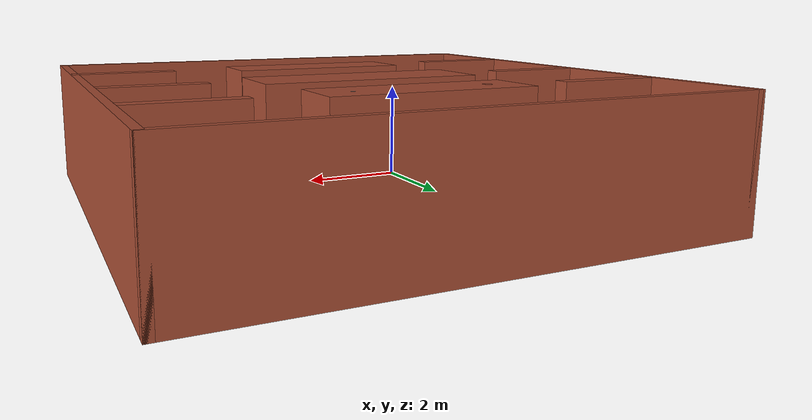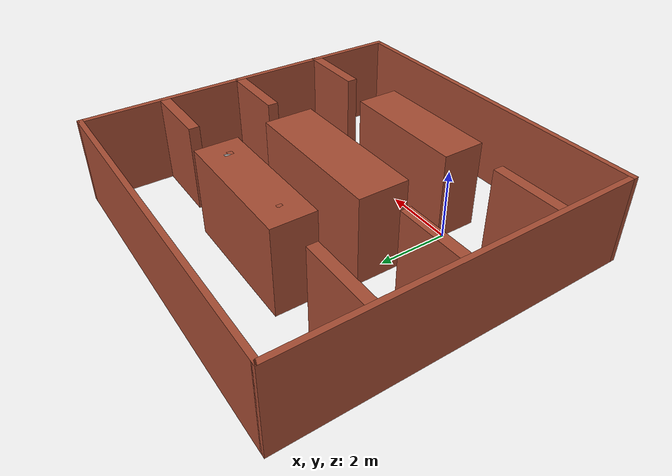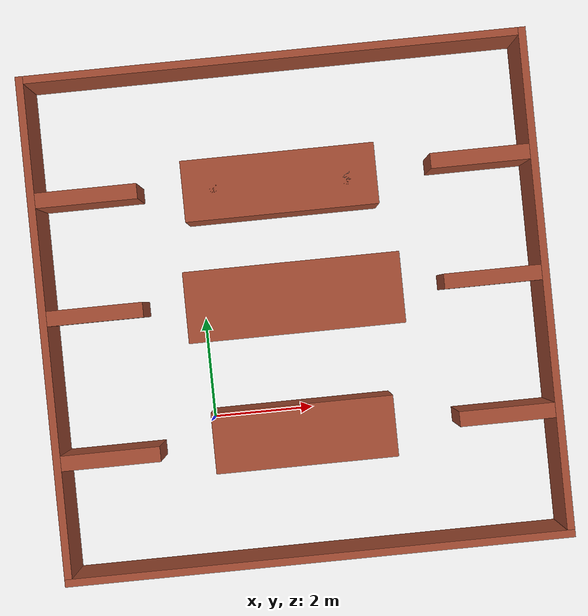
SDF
<?xml version='1.0'?>
<sdf version='1.6'>
  <model name='acme_office'>
    <pose frame=''>1.845 2.065 0 0 -0 0</pose>
    <link name='Wall_0'>
      <collision name='Wall_0_Collision'>
        <geometry>
          <box>
            <size>10 0.15 2.5</size>
          </box>
        </geometry>
        <pose frame=''>0 0 1.25 0 -0 0</pose>
      </collision>
      <visual name='Wall_0_Visual'>
        <pose frame=''>0 0 1.25 0 -0 0</pose>
        <geometry>
          <box>
            <size>10 0.15 2.5</size>
          </box>
        </geometry>
        <material>
          <script>
            <uri>file://media/materials/scripts/gazebo.material</uri>
            <name>Gazebo/Bricks</name>
          </script>
          <ambient>1 1 1 1</ambient>
        </material>
        <meta>
          <layer>0</layer>
        </meta>
      </visual>
      <pose frame=''>0 -4.925 0 0 -0 0</pose>
    </link>
    <link name='Wall_101'>
      <collision name='Wall_101_Collision'>
        <geometry>
          <box>
            <size>3.8 1.2 2.5</size>
          </box>
        </geometry>
        <pose frame=''>0 0 1.25 0 -0 0</pose>
      </collision>
      <visual name='Wall_101_Visual'>
        <pose frame=''>0 0 1.25 0 -0 0</pose>
        <geometry>
          <box>
            <size>3.8 1.2 2.5</size>
          </box>
        </geometry>
        <material>
          <script>
            <uri>file://media/materials/scripts/gazebo.material</uri>
            <name>Gazebo/Bricks</name>
          </script>
          <ambient>1 1 1 1</ambient>
        </material>
        <meta>
          <layer>0</layer>
        </meta>
      </visual>
      <pose frame=''>-0.068 2.452 0 0 -0 0</pose>
    </link>
    <link name='Wall_27'>
      <collision name='Wall_27_Collision'>
        <geometry>
          <box>
            <size>10 0.15 2.5</size>
          </box>
        </geometry>
        <pose frame=''>0 0 1.25 0 -0 0</pose>
      </collision>
      <visual name='Wall_27_Visual'>
        <pose frame=''>0 0 1.25 0 -0 0</pose>
        <geometry>
          <box>
            <size>10 0.15 2.5</size>
          </box>
        </geometry>
        <material>
          <script>
            <uri>file://media/materials/scripts/gazebo.material</uri>
            <name>Gazebo/Bricks</name>
          </script>
          <ambient>1 1 1 1</ambient>
        </material>
        <meta>
          <layer>0</layer>
        </meta>
      </visual>
      <pose frame=''>-4.925 0 0 0 -0 1.5708</pose>
    </link>
    <link name='Wall_29'>
      <collision name='Wall_29_Collision'>
        <geometry>
          <box>
            <size>10 0.15 2.5</size>
          </box>
        </geometry>
        <pose frame=''>0 0 1.25 0 -0 0</pose>
      </collision>
      <visual name='Wall_29_Visual'>
        <pose frame=''>0 0 1.25 0 -0 0</pose>
        <geometry>
          <box>
            <size>10 0.15 2.5</size>
          </box>
        </geometry>
        <material>
          <script>
            <uri>file://media/materials/scripts/gazebo.material</uri>
            <name>Gazebo/Bricks</name>
          </script>
          <ambient>1 1 1 1</ambient>
        </material>
        <meta>
          <layer>0</layer>
        </meta>
      </visual>
      <pose frame=''>4.925 0 0 0 -0 1.5708</pose>
    </link>
    <link name='Wall_32'>
      <collision name='Wall_32_Collision'>
        <geometry>
          <box>
            <size>10 0.15 2.5</size>
          </box>
        </geometry>
        <pose frame=''>0 0 1.25 0 -0 0</pose>
      </collision>
      <visual name='Wall_32_Visual'>
        <pose frame=''>0 0 1.25 0 -0 0</pose>
        <geometry>
          <box>
            <size>10 0.15 2.5</size>
          </box>
        </geometry>
        <material>
          <script>
            <uri>file://media/materials/scripts/gazebo.material</uri>
            <name>Gazebo/Bricks</name>
          </script>
          <ambient>1 1 1 1</ambient>
        </material>
        <meta>
          <layer>0</layer>
        </meta>
      </visual>
      <pose frame=''>0 4.925 0 0 -0 0</pose>
    </link>
    <link name='Wall_35'>
      <collision name='Wall_35_Collision'>
        <geometry>
          <box>
            <size>2 0.3 2.5</size>
          </box>
        </geometry>
        <pose frame=''>0 0 1.25 0 -0 0</pose>
      </collision>
      <visual name='Wall_35_Visual'>
        <pose frame=''>0 0 1.25 0 -0 0</pose>
        <geometry>
          <box>
            <size>2 0.3 2.5</size>
          </box>
        </geometry>
        <material>
          <script>
            <uri>file://media/materials/scripts/gazebo.material</uri>
            <name>Gazebo/Bricks</name>
          </script>
          <ambient>1 1 1 1</ambient>
        </material>
        <meta>
          <layer>0</layer>
        </meta>
      </visual>
      <pose frame=''>-3.85146 2.55781 0 0 -0 0</pose>
    </link>
    <link name='Wall_38'>
      <collision name='Wall_38_Collision'>
        <geometry>
          <box>
            <size>2 0.3 2.5</size>
          </box>
        </geometry>
        <pose frame=''>0 0 1.25 0 -0 0</pose>
      </collision>
      <visual name='Wall_38_Visual'>
        <pose frame=''>0 0 1.25 0 -0 0</pose>
        <geometry>
          <box>
            <size>2 0.3 2.5</size>
          </box>
        </geometry>
        <material>
          <script>
            <uri>file://media/materials/scripts/gazebo.material</uri>
            <name>Gazebo/Bricks</name>
          </script>
          <ambient>1 1 1 1</ambient>
        </material>
        <meta>
          <layer>0</layer>
        </meta>
      </visual>
      <pose frame=''>3.90305 2.575 0 0 -0 3.14159</pose>
    </link>
    <link name='Wall_50'>
      <collision name='Wall_50_Collision'>
        <geometry>
          <box>
            <size>2 0.3 2.5</size>
          </box>
        </geometry>
        <pose frame=''>0 0 1.25 0 -0 0</pose>
      </collision>
      <visual name='Wall_50_Visual'>
        <pose frame=''>0 0 1.25 0 -0 0</pose>
        <geometry>
          <box>
            <size>2 0.3 2.5</size>
          </box>
        </geometry>
        <material>
          <script>
            <uri>file://media/materials/scripts/gazebo.material</uri>
            <name>Gazebo/Bricks</name>
          </script>
          <ambient>1 1 1 1</ambient>
        </material>
        <meta>
          <layer>0</layer>
        </meta>
      </visual>
      <pose frame=''>-3.95974 0.242195 0 0 -0 0</pose>
    </link>
    <link name='Wall_53'>
      <collision name='Wall_53_Collision'>
        <geometry>
          <box>
            <size>2 0.3 2.5</size>
          </box>
        </geometry>
        <pose frame=''>0 0 1.25 0 -0 0</pose>
      </collision>
      <visual name='Wall_53_Visual'>
        <pose frame=''>0 0 1.25 0 -0 0</pose>
        <geometry>
          <box>
            <size>2 0.3 2.5</size>
          </box>
        </geometry>
        <material>
          <script>
            <uri>file://media/materials/scripts/gazebo.material</uri>
            <name>Gazebo/Bricks</name>
          </script>
          <ambient>1 1 1 1</ambient>
        </material>
        <meta>
          <layer>0</layer>
        </meta>
      </visual>
      <pose frame=''>-3.89703 -2.59387 0 0 -0 0</pose>
    </link>
    <link name='Wall_64'>
      <collision name='Wall_64_Collision'>
        <geometry>
          <box>
            <size>2 0.3 2.5</size>
          </box>
        </geometry>
        <pose frame=''>0 0 1.25 0 -0 0</pose>
      </collision>
      <visual name='Wall_64_Visual'>
        <pose frame=''>0 0 1.25 0 -0 0</pose>
        <geometry>
          <box>
            <size>2 0.3 2.5</size>
          </box>
        </geometry>
        <material>
          <script>
            <uri>file://media/materials/scripts/gazebo.material</uri>
            <name>Gazebo/Bricks</name>
          </script>
          <ambient>1 1 1 1</ambient>
        </material>
        <meta>
          <layer>0</layer>
        </meta>
      </visual>
      <pose frame=''>3.93744 0.207804 0 0 -0 0</pose>
    </link>
    <link name='Wall_77'>
      <collision name='Wall_77_Collision'>
        <geometry>
          <box>
            <size>3.57 1.2 2.5</size>
          </box>
        </geometry>
        <pose frame=''>0 0 1.25 0 -0 0</pose>
      </collision>
      <visual name='Wall_77_Visual'>
        <pose frame=''>0 0 1.25 0 -0 0</pose>
        <geometry>
          <box>
            <size>3.57 1.2 2.5</size>
          </box>
        </geometry>
        <material>
          <script>
            <uri>file://media/materials/scripts/gazebo.material</uri>
            <name>Gazebo/Bricks</name>
          </script>
          <ambient>1 1 1 1</ambient>
        </material>
        <meta>
          <layer>0</layer>
        </meta>
      </visual>
      <pose frame=''>-0.06 -2.495 0 0 -0 0</pose>
    </link>
    <link name='Wall_80'>
      <collision name='Wall_80_Collision'>
        <geometry>
          <box>
            <size>2 0.3 2.5</size>
          </box>
        </geometry>
        <pose frame=''>0 0 1.25 0 -0 0</pose>
      </collision>
      <visual name='Wall_80_Visual'>
        <pose frame=''>0 0 1.25 0 -0 0</pose>
        <geometry>
          <box>
            <size>2 0.3 2.5</size>
          </box>
        </geometry>
        <material>
          <script>
            <uri>file://media/materials/scripts/gazebo.material</uri>
            <name>Gazebo/Bricks</name>
          </script>
          <ambient>1 1 1 1</ambient>
        </material>
        <meta>
          <layer>0</layer>
        </meta>
      </visual>
      <pose frame=''>3.975 -2.495 0 0 -0 0</pose>
    </link>
    <link name='Wall_85'>
      <collision name='Wall_85_Collision'>
        <geometry>
          <box>
            <size>4.25048 1.4 2.5</size>
          </box>
        </geometry>
        <pose frame=''>0 0 1.25 0 -0 0</pose>
      </collision>
      <visual name='Wall_85_Visual'>
        <pose frame=''>0 0 1.25 0 -0 0</pose>
        <geometry>
          <box>
            <size>4.25048 1.4 2.5</size>
          </box>
        </geometry>
        <material>
          <script>
            <uri>file://media/materials/scripts/gazebo.material</uri>
            <name>Gazebo/Bricks</name>
          </script>
          <ambient>1 1 1 1</ambient>
        </material>
        <meta>
          <layer>0</layer>
        </meta>
      </visual>
      <pose frame=''>-0.004 0.188 0 0 -0 3.14159</pose>
    </link>
    <link name='Wall_90'>
      <collision name='Wall_90_Collision'>
        <geometry>
          <box>
            <size>0.15 0.15 2.5</size>
          </box>
        </geometry>
        <pose frame=''>0 0 1.25 0 -0 0</pose>
      </collision>
      <visual name='Wall_90_Visual'>
        <pose frame=''>0 0 1.25 0 -0 0</pose>
        <geometry>
          <box>
            <size>0.15 0.15 2.5</size>
          </box>
        </geometry>
        <material>
          <script>
            <uri>file://media/materials/scripts/gazebo.material</uri>
            <name>Gazebo/Grey</name>
          </script>
          <ambient>1 1 1 1</ambient>
        </material>
        <meta>
          <layer>0</layer>
        </meta>
      </visual>
      <pose frame=''>1.232 2.452 0 0 -0 0</pose>
    </link>
    <link name='Wall_92'>
      <collision name='Wall_92_Collision'>
        <geometry>
          <box>
            <size>0.15 0.15 2.5</size>
          </box>
        </geometry>
        <pose frame=''>0 0 1.25 0 -0 0</pose>
      </collision>
      <visual name='Wall_92_Visual'>
        <pose frame=''>0 0 1.25 0 -0 0</pose>
        <geometry>
          <box>
            <size>0.15 0.15 2.5</size>
          </box>
        </geometry>
        <material>
          <script>
            <uri>file://media/materials/scripts/gazebo.material</uri>
            <name>Gazebo/Bricks</name>
          </script>
          <ambient>1 1 1 1</ambient>
        </material>
        <meta>
          <layer>0</layer>
        </meta>
      </visual>
      <pose frame=''>-1.368 2.452 0 0 -0 0</pose>
    </link>
    <link name='Wall_95'>
      <collision name='Wall_95_Collision'>
        <geometry>
          <box>
            <size>0.15 0.15 2.5</size>
          </box>
        </geometry>
        <pose frame=''>0 0 1.25 0 -0 0</pose>
      </collision>
      <visual name='Wall_95_Visual'>
        <pose frame=''>0 0 1.25 0 -0 0</pose>
        <geometry>
          <box>
            <size>0.15 0.15 2.5</size>
          </box>
        </geometry>
        <material>
          <script>
            <uri>file://media/materials/scripts/gazebo.material</uri>
            <name>Gazebo/Bricks</name>
          </script>
          <ambient>1 1 1 1</ambient>
        </material>
        <meta>
          <layer>0</layer>
        </meta>
      </visual>
      <pose frame=''>1.24644 2.35536 0 0 -0 0</pose>
    </link>
    <static>1</static>
  </model>
</sdf>
